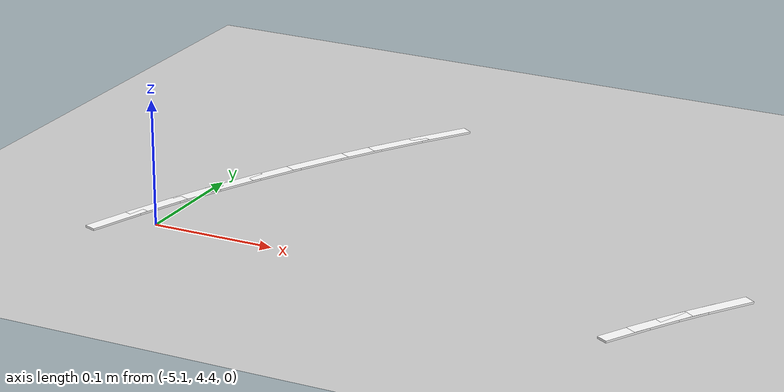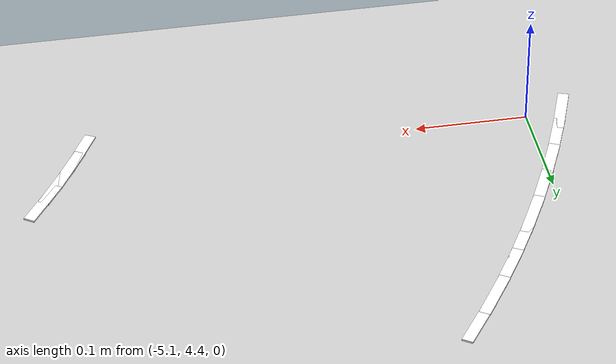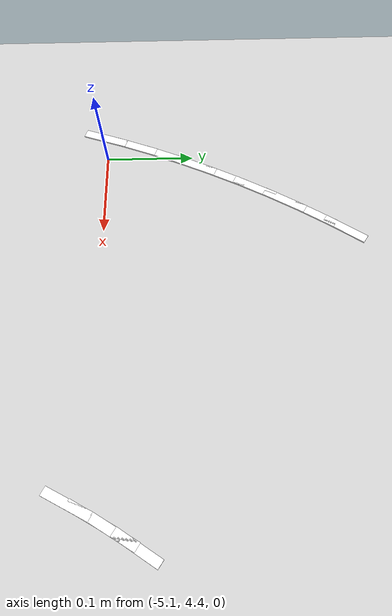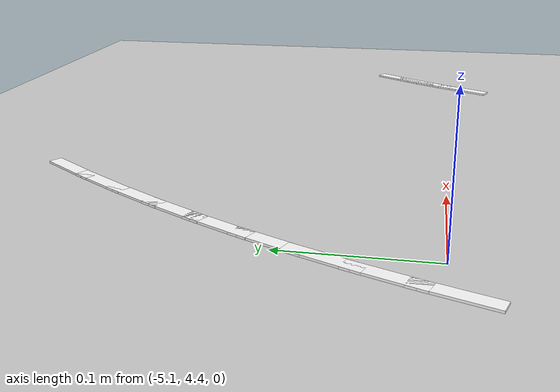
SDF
<sdf version="1.7">
 <world name="default">
  <model name="ground_plane">
   <static>1</static>
   <link name="link">
    <collision name="collision">
     <geometry><plane><normal>0 0 1</normal><size>100 100</size></plane></geometry>
     <surface>
      <contact><collide_bitmask>65535</collide_bitmask></contact>
      <friction><ode><mu>100</mu><mu2>50</mu2></ode></friction>
     </surface>
    </collision>
    <visual name="visual">
     <cast_shadows>0</cast_shadows>
     <geometry><plane><normal>0 0 1</normal><size>100 100</size></plane></geometry>
     <material>
      <script><uri>file://media/materials/scripts/gazebo.material</uri><name>Gazebo/Grey</name></script>
     </material>
    </visual>
   </link>
  </model>
  <model name="lane_line_left_280">
   <static>1</static>
   <link name="link">
    <pose>0 0 -0.004 0 -0 0</pose>
    <visual name="visual">
     <geometry><box><size>0.0521 0.01 0.01</size></box></geometry>
     <material><ambient>1 1 1 1</ambient><diffuse>1 1 1 1</diffuse></material>
    </visual>
    <collision name="collision"><geometry><box><size>0.0521 0.01 0.01</size></box></geometry></collision>
   </link>
   <pose>-4.66328 4.44705 0 0 0 -2.16385</pose>
  </model>
  <model name="lane_line_right_280">
   <static>1</static>
   <link name="link">
    <pose>0 0 -0.004 0 -0 0</pose>
    <visual name="visual">
     <geometry><box><size>0.0521 0.01 0.01</size></box></geometry>
     <material><ambient>1 1 1 1</ambient><diffuse>1 1 1 1</diffuse></material>
    </visual>
    <collision name="collision"><geometry><box><size>0.0521 0.01 0.01</size></box></geometry></collision>
   </link>
   <pose>-4.99498 4.67061 0 0 0 -2.16385</pose>
  </model>
  <model name="lane_line_left_281">
   <static>1</static>
   <link name="link">
    <pose>0 0 -0.004 0 -0 0</pose>
    <visual name="visual">
     <geometry><box><size>0.0521 0.01 0.01</size></box></geometry>
     <material><ambient>1 1 1 1</ambient><diffuse>1 1 1 1</diffuse></material>
    </visual>
    <collision name="collision"><geometry><box><size>0.0521 0.01 0.01</size></box></geometry></collision>
   </link>
   <pose>-4.67727 4.42556 0 0 0 -2.1318</pose>
  </model>
  <model name="lane_line_right_281">
   <static>1</static>
   <link name="link">
    <pose>0 0 -0.004 0 -0 0</pose>
    <visual name="visual">
     <geometry><box><size>0.0521 0.01 0.01</size></box></geometry>
     <material><ambient>1 1 1 1</ambient><diffuse>1 1 1 1</diffuse></material>
    </visual>
    <collision name="collision"><geometry><box><size>0.0521 0.01 0.01</size></box></geometry></collision>
   </link>
   <pose>-5.01596 4.63837 0 0 0 -2.1318</pose>
  </model>
  <model name="lane_line_left_282">
   <static>1</static>
   <link name="link">
    <pose>0 0 -0.004 0 -0 0</pose>
    <visual name="visual">
     <geometry><box><size>0.0521 0.01 0.01</size></box></geometry>
     <material><ambient>1 1 1 1</ambient><diffuse>1 1 1 1</diffuse></material>
    </visual>
    <collision name="collision"><geometry><box><size>0.0521 0.01 0.01</size></box></geometry></collision>
   </link>
   <pose>-4.69056 4.40363 0 0 0 -2.09974</pose>
  </model>
  <model name="lane_line_right_282">
   <static>1</static>
   <link name="link">
    <pose>0 0 -0.004 0 -0 0</pose>
    <visual name="visual">
     <geometry><box><size>0.0521 0.01 0.01</size></box></geometry>
     <material><ambient>1 1 1 1</ambient><diffuse>1 1 1 1</diffuse></material>
    </visual>
    <collision name="collision"><geometry><box><size>0.0521 0.01 0.01</size></box></geometry></collision>
   </link>
   <pose>-5.0359 4.60548 0 0 0 -2.09974</pose>
  </model>
  <model name="lane_line_left_283">
   <static>1</static>
   <link name="link">
    <pose>0 0 -0.004 0 -0 0</pose>
    <visual name="visual">
     <geometry><box><size>0.0521 0.01 0.01</size></box></geometry>
     <material><ambient>1 1 1 1</ambient><diffuse>1 1 1 1</diffuse></material>
    </visual>
    <collision name="collision"><geometry><box><size>0.0521 0.01 0.01</size></box></geometry></collision>
   </link>
   <pose>-4.70314 4.38129 0 0 0 -2.06768</pose>
  </model>
  <model name="lane_line_right_283">
   <static>1</static>
   <link name="link">
    <pose>0 0 -0.004 0 -0 0</pose>
    <visual name="visual">
     <geometry><box><size>0.0521 0.01 0.01</size></box></geometry>
     <material><ambient>1 1 1 1</ambient><diffuse>1 1 1 1</diffuse></material>
    </visual>
    <collision name="collision"><geometry><box><size>0.0521 0.01 0.01</size></box></geometry></collision>
   </link>
   <pose>-5.05477 4.57197 0 0 0 -2.06768</pose>
  </model>
  <model name="lane_line_right_284">
   <static>1</static>
   <link name="link">
    <pose>0 0 -0.004 0 -0 0</pose>
    <visual name="visual">
     <geometry><box><size>0.0521 0.01 0.01</size></box></geometry>
     <material><ambient>1 1 1 1</ambient><diffuse>1 1 1 1</diffuse></material>
    </visual>
    <collision name="collision"><geometry><box><size>0.0521 0.01 0.01</size></box></geometry></collision>
   </link>
   <pose>-5.07256 4.53786 0 0 0 -2.03562</pose>
  </model>
  <model name="lane_line_right_285">
   <static>1</static>
   <link name="link">
    <pose>0 0 -0.004 0 -0 0</pose>
    <visual name="visual">
     <geometry><box><size>0.0521 0.01 0.01</size></box></geometry>
     <material><ambient>1 1 1 1</ambient><diffuse>1 1 1 1</diffuse></material>
    </visual>
    <collision name="collision"><geometry><box><size>0.0521 0.01 0.01</size></box></geometry></collision>
   </link>
   <pose>-5.08925 4.50321 0 0 0 -2.00357</pose>
  </model>
  <model name="lane_line_right_286">
   <static>1</static>
   <link name="link">
    <pose>0 0 -0.004 0 -0 0</pose>
    <visual name="visual">
     <geometry><box><size>0.0521 0.01 0.01</size></box></geometry>
     <material><ambient>1 1 1 1</ambient><diffuse>1 1 1 1</diffuse></material>
    </visual>
    <collision name="collision"><geometry><box><size>0.0521 0.01 0.01</size></box></geometry></collision>
   </link>
   <pose>-5.10482 4.46804 0 0 0 -1.97151</pose>
  </model>
  <model name="lane_line_right_287">
   <static>1</static>
   <link name="link">
    <pose>0 0 -0.004 0 -0 0</pose>
    <visual name="visual">
     <geometry><box><size>0.0521 0.01 0.01</size></box></geometry>
     <material><ambient>1 1 1 1</ambient><diffuse>1 1 1 1</diffuse></material>
    </visual>
    <collision name="collision"><geometry><box><size>0.0521 0.01 0.01</size></box></geometry></collision>
   </link>
   <pose>-5.11926 4.43239 0 0 0 -1.93945</pose>
  </model>
  <model name="lane_line_right_288">
   <static>1</static>
   <link name="link">
    <pose>0 0 -0.004 0 -0 0</pose>
    <visual name="visual">
     <geometry><box><size>0.0521 0.01 0.01</size></box></geometry>
     <material><ambient>1 1 1 1</ambient><diffuse>1 1 1 1</diffuse></material>
    </visual>
    <collision name="collision"><geometry><box><size>0.0521 0.01 0.01</size></box></geometry></collision>
   </link>
   <pose>-5.13254 4.39629 0 0 0 -1.9074</pose>
  </model>
 </world>
</sdf>
